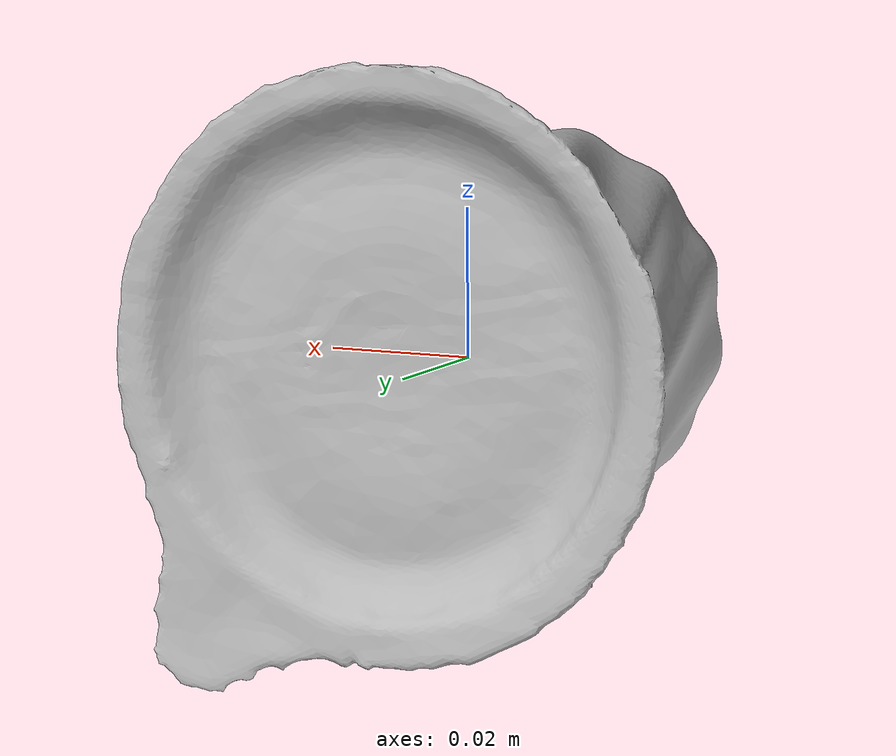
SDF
<?xml version='1.0'?>
<sdf version="1.4">
  <model name="ChocoIcing">
    <static>false</static>
    <link name="link">
      <inertial>
        <pose>0.003222793889240377 -0.0028896889687683763 0.0001660371931406246 -0.6540071980387515 0.0434577036072877 2.167022718308433</pose>
        <mass>0.020190039733595413</mass>
        <inertia>
          <ixx>1.2114622045454508e-05</ixx>
          <ixy>4.0742795876547674e-21</ixy>
          <ixz>3.703497226795898e-21</ixz>
          <iyy>1.2057810077584588e-05</iyy>
          <iyz>2.2011544558125064e-22</iyz>
          <izz>1.0767212297191385e-05</izz>
        </inertia>
      </inertial>
      <collision name="collision">
        <geometry>
          <mesh>
            <!-- Use a downsampled mesh for collisions -->
            <uri>model:///ChocoIcing/ChocoIcing_250_collision.obj</uri>
	        </mesh>
        </geometry>
        <surface>
      </surface>
      </collision>
      <visual name="visual">
        <geometry>
          <mesh>
            <uri>model:///ChocoIcing/ChocoIcing_25k_tex.obj</uri>
	        </mesh>
        </geometry>
        <material>
          <script>
            <uri>model:///ChocoIcing/ChocoIcing.material</uri>
            <name>ChocoIcing</name>
          </script>
        </material>
      </visual>
    </link>
  </model>
</sdf>
